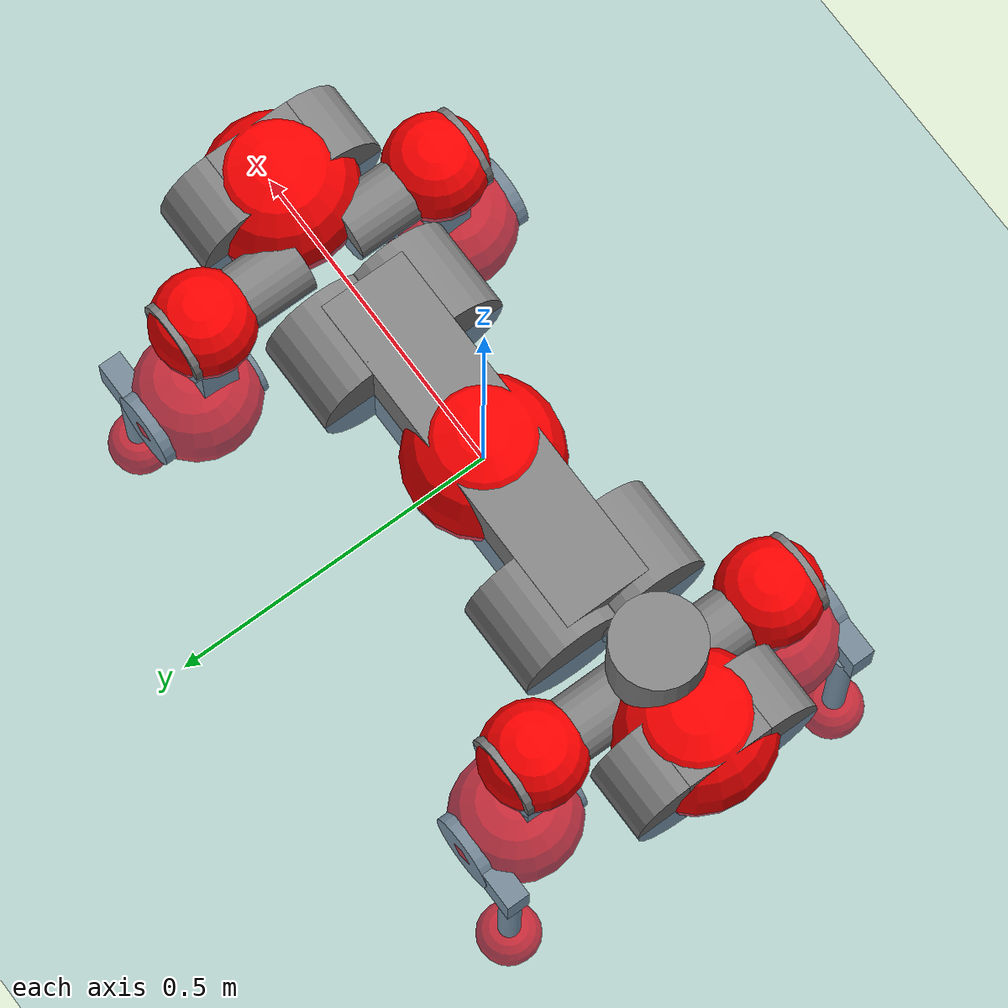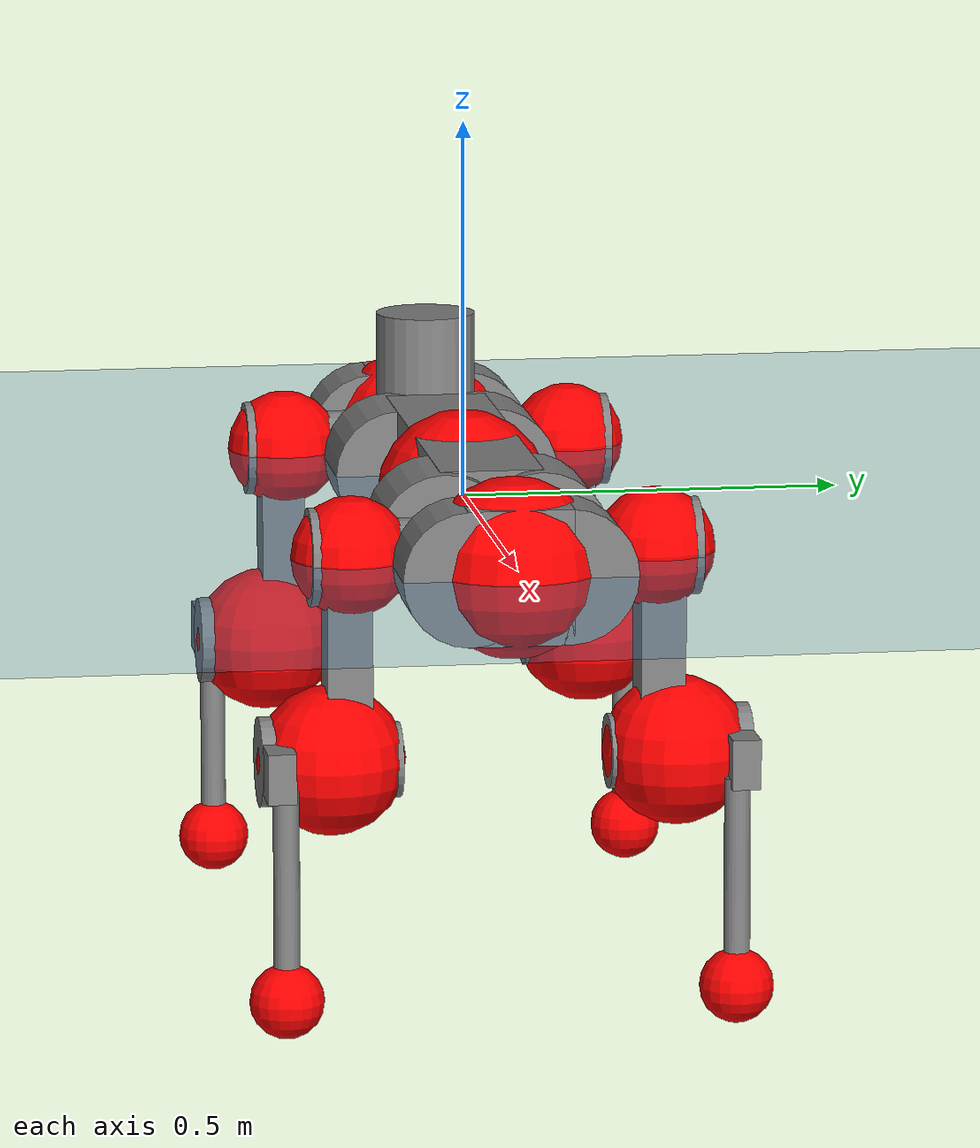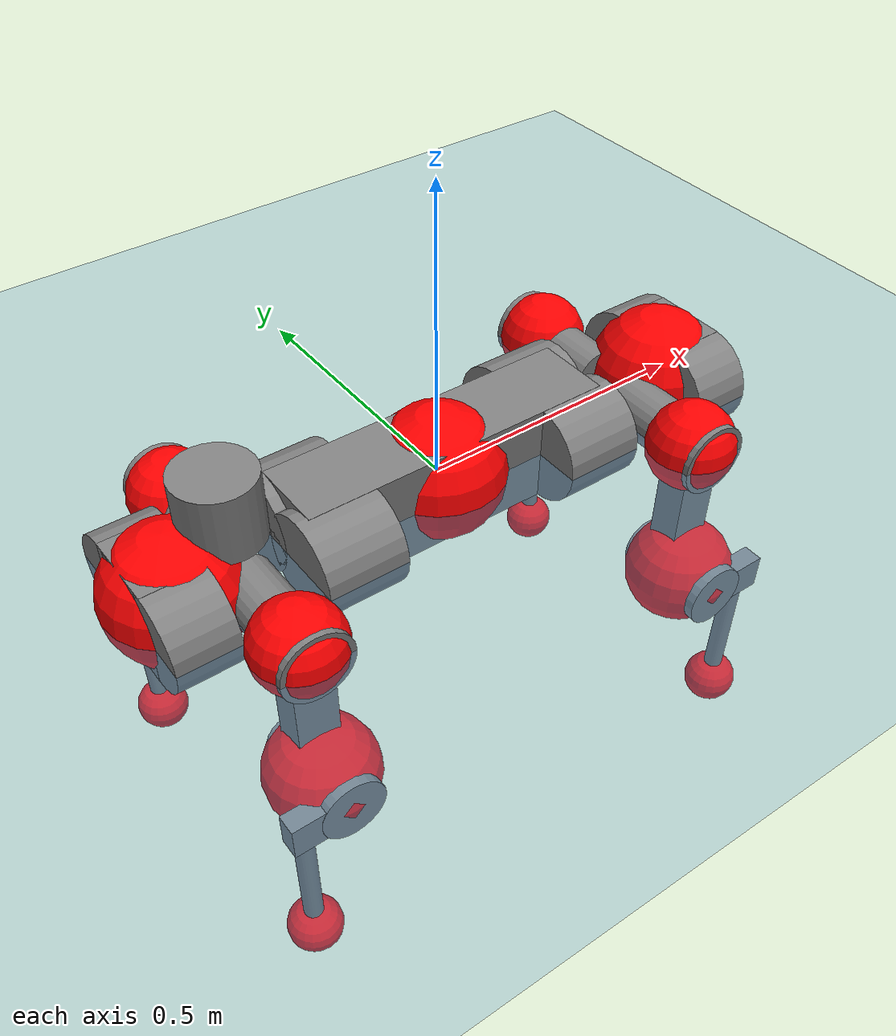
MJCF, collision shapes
<mujoco model="anymal_c">
  <compiler angle="radian" assetdir="assets" balanceinertia="true" inertiafromgeom="false"/>

  <option timestep="0.005" density="1.2" viscosity="2e-05"/>

  <size nkey="1"/>

  <visual>
    <quality shadowsize="8192"/>
    <map shadowclip="0.5"/>
  </visual>

  <default>
    <default class="/">
      <material specular="0" shininess="0.25"/>
      <geom contype="0" conaffinity="0" group="1" solref="-1000 -80"/>
      <site size="0.01 0.005 0.005" group="5"/>
      <general forcelimited="true" forcerange="-80 80" biastype="affine" gainprm="80" biasprm="0 -80 -2"/>
      <default class="anymal_c">
        <joint armature="0.01" damping="0.01" frictionloss="0.1"/>
        <default class="visual">
          <geom type="mesh" group="2"/>
          <default class="visual_zflip"/>
        </default>
        <default class="collision">
          <geom type="cylinder" group="3"/>
          <default class="foot">
            <geom size="0.03 0 0" type="sphere" condim="6" priority="1" friction="0.8 0.02 0.01" solimp="0.015 1 0.03"/>
          </default>
        </default>
      </default>
      <default class="reward_collision_sphere">
        <geom group="5" rgba="1 0 0 1"/>
      </default>
    </default>
  </default>

  <asset>
    <texture type="skybox" colorspace="auto" name="//unnamed_texture_0" builtin="gradient" rgb1="0.95 0.95 0.95" rgb2="0.95 0.95 0.95" width="100" height="600"/>
    <texture type="2d" colorspace="auto" name="texplane" builtin="checker" rgb1="0.345 0.575 0.748" rgb2="0.345 0.575 0.748" markrgb="1 1 1" width="512" height="512"/>
    <texture type="2d" colorspace="linear" name="base" file="base.png"/>
    <texture type="2d" colorspace="linear" name="top_shell" file="top_shell.png"/>
    <texture type="2d" colorspace="linear" name="bottom_shell" file="bottom_shell.png"/>
    <texture type="2d" colorspace="linear" name="remote" file="remote.png"/>
    <texture type="2d" colorspace="linear" name="hatch" file="hatch.png"/>
    <texture type="2d" colorspace="linear" name="handle" file="handle.png"/>
    <texture type="2d" colorspace="linear" name="face" file="face.png"/>
    <texture type="2d" colorspace="linear" name="battery" file="battery.png"/>
    <texture type="2d" colorspace="linear" name="lidar_cage" file="lidar_cage.png"/>
    <texture type="2d" colorspace="linear" name="depth_camera" file="depth_camera.png"/>
    <texture type="2d" colorspace="linear" name="wide_angle_camera" file="wide_angle_camera.png"/>
    <texture type="2d" colorspace="linear" name="lidar" file="lidar.png"/>
    <texture type="2d" colorspace="linear" name="drive" file="drive.png"/>
    <texture type="2d" colorspace="linear" name="hip_l" file="hip_l.png"/>
    <texture type="2d" colorspace="linear" name="shank_l" file="shank_l.png"/>
    <texture type="2d" colorspace="linear" name="foot" file="foot.png"/>
    <texture type="2d" colorspace="linear" name="thigh" file="thigh.png"/>
    <texture type="2d" colorspace="linear" name="shank_r" file="shank_r.png"/>
    <texture type="2d" colorspace="linear" name="hip_r" file="hip_r.png"/>
    <material name="MatPlane" class="/" texture="texplane" texuniform="true" texrepeat="2 2" specular="0.9" shininess="0.5"/>
    <material name="black_plastic" class="/" rgba="0.007 0.007 0.007 1"/>
    <material name="green" class="/" rgba="0.052 0.178 0.033 1"/>
    <material name="red" class="/" rgba="0.178 0.006 0.005 1"/>
    <material name="yellow" class="/" rgba="0.178 0.119 0.006 1"/>
    <material name="lwl" class="/" rgba="0.8 0.8 0.8 1"/>
    <material name="base" class="/" texture="base"/>
    <material name="top_shell" class="/" texture="top_shell"/>
    <material name="bottom_shell" class="/" texture="bottom_shell"/>
    <material name="hip_l" class="/" texture="hip_l"/>
    <material name="thigh" class="/" texture="thigh"/>
    <material name="shank_l" class="/" texture="shank_l"/>
    <material name="foot" class="/" texture="foot"/>
    <material name="hip_r" class="/" texture="hip_r"/>
    <material name="shank" class="/" texture="shank_r"/>
    <material name="hatch" class="/" texture="hatch"/>
    <material name="remote" class="/" texture="remote"/>
    <material name="handle" class="/" texture="handle"/>
    <material name="face" class="/" texture="face"/>
    <material name="depth_camera" class="/" texture="depth_camera"/>
    <material name="wide_angle_camera" class="/" texture="wide_angle_camera"/>
    <material name="battery" class="/" texture="battery"/>
    <material name="lidar_cage" class="/" texture="lidar_cage"/>
    <material name="lidar" class="/" texture="lidar"/>
    <material name="drive" class="/" texture="drive"/>
    <mesh name="base_0" class="/" file="base_0.obj"/>
    <mesh name="base_1" class="/" file="base_1.obj"/>
    <mesh name="base_2" class="/" file="base_2.obj"/>
    <mesh name="base_3" class="/" file="base_3.obj"/>
    <mesh name="base_4" class="/" file="base_4.obj"/>
    <mesh name="base_5" class="/" file="base_5.obj"/>
    <mesh name="top_shell" class="/" file="top_shell.obj"/>
    <mesh name="bottom_shell" class="/" file="bottom_shell.obj"/>
    <mesh name="remote" class="/" file="remote.obj"/>
    <mesh name="handle" class="/" file="handle.obj"/>
    <mesh name="face" class="/" file="face.obj"/>
    <mesh name="wide_angle_camera" class="/" file="wide_angle_camera.obj"/>
    <mesh name="depth_camera" class="/" file="depth_camera.obj"/>
    <mesh name="battery" class="/" file="battery.obj"/>
    <mesh name="lidar_cage" class="/" file="lidar_cage.obj"/>
    <mesh name="lidar" class="/" file="lidar.obj"/>
    <mesh name="drive" class="/" file="drive.obj"/>
    <mesh name="hip_l" class="/" file="hip_l.obj"/>
    <mesh name="thigh" class="/" file="thigh.obj"/>
    <mesh name="shank_l" class="/" file="shank_l.obj"/>
    <mesh name="foot" class="/" file="foot.obj"/>
    <mesh name="hip_r" class="/" file="hip_r.obj"/>
    <mesh name="hatch" class="/" file="hatch.obj"/>
    <mesh name="shank_r" class="/" file="shank_r.obj"/>
  </asset>

  <worldbody>
    <geom name="floor" class="/" size="100 100 0.125" type="plane" group="0" material="MatPlane"/>
    <light name="toplight_shadow" class="/" pos="0 0 5" dir="0.0990148 0.0990148 -0.990148" type="directional" ambient="0.04 0.04 0.04" diffuse="0.55 0.55 0.55" specular="0.12 0.12 0.12"/>
    <light name="toplight_fill" class="/" pos="0 0 5" dir="0.0990148 0.0990148 -0.990148" type="directional" castshadow="false" ambient="0.04 0.04 0.04" diffuse="0.3 0.3 0.3" specular="0.08 0.08 0.08"/>
    <body name="trunk" childclass="anymal_c" pos="0.00198551 -0.000996201 -0.000523379" quat="1 6.25382e-05 -0.000338721 5.57e-05">
      <inertial pos="0.00243114 -0.000162928 0.0462311" quat="0.50155 0.499759 0.499912 0.498775" mass="17.0823" diaginertia="0.895002 0.378787 0.157495"/>
      <joint name="//unnamed_joint_0" type="free" armature="0" damping="0" frictionloss="0"/>
      <geom name="//unnamed_geom_1" class="visual" material="green" mesh="base_0"/>
      <geom name="//unnamed_geom_2" class="visual" material="yellow" mesh="base_1"/>
      <geom name="//unnamed_geom_3" class="visual" material="red" mesh="base_2"/>
      <geom name="//unnamed_geom_4" class="visual" material="black_plastic" mesh="base_3"/>
      <geom name="//unnamed_geom_5" class="visual" material="lwl" mesh="base_4"/>
      <geom name="//unnamed_geom_6" class="visual" material="base" mesh="base_5"/>
      <geom name="trunk_1" class="collision" size="0.280405 0.0676839 0.0870222" type="box"/>
      <geom name="trunk_2" class="collision" size="0.0870222 0.0701012" pos="0.230716 0.0631531 0" quat="0.707107 0 0.707107 0"/>
      <geom name="trunk_3" class="collision" size="0.0870222 0.0701012" pos="-0.230716 0.0631531 0" quat="0.707107 0 0.707107 0"/>
      <geom name="trunk_4" class="collision" size="0.0870222 0.0701012" pos="0.230716 -0.0631531 0" quat="0.707107 0 0.707107 0"/>
      <geom name="trunk_5" class="collision" size="0.0870222 0.0701012" pos="-0.230716 -0.0631531 0" quat="0.707107 0 0.707107 0"/>
      <geom name="//unnamed_geom_12" class="visual" material="top_shell" mesh="top_shell"/>
      <geom name="//unnamed_geom_13" class="visual" material="bottom_shell" mesh="bottom_shell"/>
      <geom name="//unnamed_geom_14" class="visual" material="remote" mesh="remote"/>
      <geom name="//unnamed_geom_15" class="visual" material="handle" mesh="handle"/>
      <geom name="//unnamed_geom_16" class="visual" pos="0.439687 0 0" quat="1 0 0 0" material="face" mesh="face"/>
      <geom name="trunk_6" class="collision" size="0.0531802 0.0676839 0.0870222" pos="0.498029 0 0" type="box"/>
      <geom name="//unnamed_geom_18" class="collision" size="0.0870222 0.0531802" pos="0.498029 0.0631531 0" quat="0.707107 0 0.707107 0"/>
      <geom name="//unnamed_geom_19" class="collision" size="0.0870222 0.0531802" pos="0.498029 -0.0631531 0" quat="0.707107 0 0.707107 0"/>
      <geom name="//unnamed_geom_20" class="visual" pos="0.489697 0 -0.0264488" quat="0.965926 0 0.258819 0" material="depth_camera" mesh="depth_camera"/>
      <geom name="//unnamed_geom_21" class="visual" pos="0.544172 0 0.0140387" material="wide_angle_camera" mesh="wide_angle_camera"/>
      <geom name="//unnamed_geom_22" class="visual_zflip" pos="-0.439687 0 0" quat="0 0 0 1" material="face" mesh="face"/>
      <geom name="trunk_7" class="collision" size="0.0531802 0.0676839 0.0870222" pos="-0.498029 0 0" quat="0 0 0 1" type="box"/>
      <geom name="//unnamed_geom_24" class="collision" size="0.0870222 0.0531802" pos="-0.498029 -0.0631531 0" quat="0 -0.707107 0 0.707107"/>
      <geom name="//unnamed_geom_25" class="collision" size="0.0870222 0.0531802" pos="-0.498029 0.0631531 0" quat="0 -0.707107 0 0.707107"/>
      <geom name="//unnamed_geom_26" class="visual" pos="-0.489697 0 -0.0264488" quat="0 -0.258819 0 0.965926" material="depth_camera" mesh="depth_camera"/>
      <geom name="//unnamed_geom_27" class="visual_zflip" pos="-0.544172 0 0.0140387" quat="0 0 0 1" material="wide_angle_camera" mesh="wide_angle_camera"/>
      <geom name="//unnamed_geom_28" class="visual" material="battery" mesh="battery"/>
      <geom name="//unnamed_geom_29" class="visual" pos="0 0.0668952 0.0281774" quat="0.683013 -0.183013 0.183013 0.683013" material="depth_camera" mesh="depth_camera"/>
      <geom name="//unnamed_geom_30" class="visual" pos="0 -0.0668952 0.0281774" quat="0.683013 0.183013 0.183013 -0.683013" material="depth_camera" mesh="depth_camera"/>
      <geom name="//unnamed_geom_31" class="visual" pos="-0.386118 0 0.0689274" quat="1 0 0 0" material="lidar_cage" mesh="lidar_cage"/>
      <geom name="trunk_8" class="collision" size="0.0676839 0.0580148" pos="-0.386118 0 0.125195"/>
      <geom name="//unnamed_geom_33" class="visual" pos="-0.386118 -6.23012e-05 0.133353" quat="0.707107 0 0 -0.707107" material="lidar" mesh="lidar"/>
      <geom name="//unnamed_geom_34" class="visual" pos="0.318123 0.0938401 -6.14117e-10" quat="0.258819 0.965926 0 0" material="drive" mesh="drive"/>
      <geom name="//unnamed_geom_35" class="visual" pos="0.318123 -0.0938401 6.14117e-10" quat="0.258819 -0.965926 0 0" material="drive" mesh="drive"/>
      <geom name="//unnamed_geom_36" class="visual" pos="-0.318123 0.0938401 6.14117e-10" quat="0 0 0.965926 -0.258819" material="drive" mesh="drive"/>
      <geom name="//unnamed_geom_37" class="visual" pos="-0.318123 -0.0938401 -6.14117e-10" quat="0 0 -0.965926 -0.258819" material="drive" mesh="drive"/>
      <geom name="//unnamed_geom_38" class="visual" pos="0.123049 0 0.0684585" quat="1 0 0 0" material="hatch" mesh="hatch"/>
      <geom name="//unnamed_geom_39" class="reward_collision_sphere" size="0.11603"/>
      <geom name="//unnamed_geom_40" class="reward_collision_sphere" size="0.11603" pos="0.477344 0 0"/>
      <geom name="//unnamed_geom_41" class="reward_collision_sphere" size="0.11603" pos="-0.477344 0 0"/>
      <site name="imu" pos="0.259508 0.00621869 0.031485" size="0.00966913"/>
      <camera name="track" pos="0 -1.80437 0" quat="0.707107 0.707107 0 0" mode="trackcom"/>
      <camera name="ego_camera" pos="0.477344 0 -0.0375115" quat="-0.5 -0.5 0.5 0.5"/>
      <body name="LF_HIP" pos="0.318657 0.0944339 0.000870783" quat="0.259042 0.965866 8.66187e-05 -0.000789839">
        <inertial pos="0.0579248 -0.012516 -0.00732897" quat="-0.127978 0.709773 -0.135305 0.679365" mass="2.52618" diaginertia="0.00789696 0.00290414 0.00237157"/>
        <joint name="LF_HAA" pos="0 0 0" axis="0.999891 -0.00133732 -0.0146878" range="-0.729823 0.490436" armature="0.00851799" damping="0.00864308" frictionloss="0.0936557"/>
        <geom name="//unnamed_geom_42" class="visual" pos="0 -3.61257e-05 5.93362e-06" quat="0.258819 -0.965926 0 0" material="hip_l" mesh="hip_l"/>
        <geom name="//unnamed_geom_43" class="visual" pos="0.0635398 -0.0749167 -0.0435165" quat="0.183013 -0.683013 0.683013 0.183013" material="drive" mesh="drive"/>
        <geom name="//unnamed_geom_44" class="collision" size="0.0483457 0.0676839" pos="0.0635398 -0.01079 -0.00647542" quat="-0.353553 -0.612372 0.612372 -0.353553"/>
        <body name="LF_THIGH" pos="0.0639628 -0.0647983 -0.0398445" quat="0.183329 -0.682967 0.682921 0.18321">
          <inertial pos="0.032719 1.27432e-05 -0.232784" quat="0.993547 -0.00441147 -0.0792446 0.0810272" mass="2.82202" diaginertia="0.0411024 0.0181019 0.00307837"/>
          <joint name="LF_HFE" pos="0 0 0" axis="0.999998 -0.00143814 0.00131599" range="-3.16303 3.13996" armature="0.0104947" damping="0.00985506" frictionloss="0.097359"/>
          <geom name="//unnamed_geom_45" class="visual" pos="0.00315509 4.97168e-06 0" quat="0.707107 0 0 -0.707107" material="thigh" mesh="thigh"/>
          <geom name="//unnamed_geom_46" class="collision" size="0.0628494 0.0386765" pos="0.0424306 0 0" quat="0.5 0.5 -0.5 -0.5"/>
          <geom name="//unnamed_geom_47" class="collision" size="0.0362592 0.0290074 0.136638" pos="0.031823 0 -0.132523" quat="0.707107 0 0 -0.707107" type="box"/>
          <geom name="//unnamed_geom_48" class="visual" pos="0.106395 0 -0.267269" quat="1 0 0 0" material="drive" mesh="drive"/>
          <geom name="//unnamed_geom_49" class="collision" size="0.0483457 0.0676839" pos="0.0321412 0 -0.267269" quat="0.707107 0 0.707107 0"/>
          <geom name="//unnamed_geom_50" class="reward_collision_sphere" size="0.077353" pos="0.0265191 0 0"/>
          <body name="LF_SHANK" pos="0.106746 -0.00284269 -0.266398" quat="1 -0.000323832 0.000116303 3.02188e-05">
            <inertial pos="0.0051239 -0.0546787 -0.0758826" quat="0.992613 -0.115918 -0.0065692 -0.0352097" mass="0.532825" diaginertia="0.0134701 0.00552826 0.000795537"/>
            <joint name="LF_KFE" pos="0 0 0" axis="0.999988 0.00480176 0.000348952" range="-3.14495 3.13939" armature="0.00964285" damping="0.00229308" frictionloss="0.099275"/>
            <geom name="//unnamed_geom_51" class="visual" pos="0.0010288 0.00548564 0" quat="0.707107 0 0 -0.707107" material="shank_l" mesh="shank_l"/>
            <geom name="LF_kfe_act" class="collision" size="0.0580148 0.0193383" pos="0.0212153 0 0" quat="0.5 0.5 -0.5 -0.5"/>
            <geom name="//unnamed_geom_53" class="collision" size="0.0555965 0.0326333 0.0183713" pos="0.0212153 -0.0518748 0" quat="0.5 0.5 -0.5 -0.5" type="box"/>
            <geom name="//unnamed_geom_54" class="visual" pos="0.0138427 -0.0775795 -0.316944" quat="0.382683 0 0 -0.92388" material="foot" mesh="foot"/>
            <geom name="LF_calf" class="collision" size="0.016921 0.136578" pos="0.013843 -0.0793473 -0.158472" quat="0.707107 0 0 -0.707107"/>
            <geom name="LF_foot" class="foot" size="0.0301286" pos="0.013843 -0.0793473 -0.295844" quat="0.707107 0 0 -0.707107"/>
            <geom name="//unnamed_geom_57" class="reward_collision_sphere" size="0.0966913" pos="-0.0530383 0 0"/>
            <geom name="//unnamed_geom_58" class="reward_collision_sphere" size="0.0483457" pos="0.013843 -0.0793473 -0.295844"/>
            <site name="LF_foot" class="foot" pos="0.013843 -0.0793473 -0.295844" quat="0.707107 0 0 -0.707107" size="0.00966913"/>
          </body>
        </body>
      </body>
      <body name="RF_HIP" pos="0.316183 -0.0920124 -0.000734196" quat="0.258805 -0.96593 -1.8308e-06 1.17098e-05">
        <inertial pos="0.0626666 0.0131188 -0.0100208" quat="0.135629 0.679392 0.127769 0.709723" mass="2.59308" diaginertia="0.00805374 0.00300968 0.00245215"/>
        <joint name="RF_HAA" pos="0 0 0" axis="0.999932 0.0115848 -0.00136692" range="-0.537942 0.728908" armature="0.00975516" damping="0.0122981" frictionloss="0.0888135"/>
        <geom name="//unnamed_geom_59" class="visual" pos="0 3.61255e-05 5.93361e-06" quat="0.258819 0.965926 0 0" material="hip_r" mesh="hip_r"/>
        <geom name="//unnamed_geom_60" class="visual" pos="0.0635398 0.0749167 -0.0435165" quat="0.183013 0.683013 0.683013 -0.183013" material="drive" mesh="drive"/>
        <geom name="//unnamed_geom_61" class="collision" size="0.0483457 0.0676839" pos="0.0635398 0.01079 -0.00647542" quat="-0.353553 0.612372 0.612372 0.353553"/>
        <body name="RF_THIGH" pos="0.0639119 0.0663008 -0.0397397" quat="0.183013 0.683178 0.68283 -0.183078">
          <inertial pos="0.0333137 0.00244085 -0.230886" quat="0.992771 -0.00515867 -0.0807099 0.088686" mass="2.73842" diaginertia="0.0404487 0.0176421 0.002994"/>
          <joint name="RF_HFE" pos="0 0 0" axis="0.999991 -0.00272914 -0.00324958" stiffness="0.0020531" range="-3.14945 3.12862" armature="0.0101608" damping="0.00110473" frictionloss="0.0954289"/>
          <geom name="//unnamed_geom_62" class="visual" pos="0.00315509 4.97168e-06 0" quat="0.707107 0 0 -0.707107" material="thigh" mesh="thigh"/>
          <geom name="//unnamed_geom_63" class="collision" size="0.0628494 0.0386765" pos="0.0424306 0 0" quat="0.5 0.5 0.5 0.5"/>
          <geom name="//unnamed_geom_64" class="collision" size="0.0362592 0.0290074 0.136638" pos="0.031823 0 -0.132523" quat="0.707107 0 0 0.707107" type="box"/>
          <geom name="//unnamed_geom_65" class="visual" pos="0.106395 0 -0.267269" quat="1 0 0 0" material="drive" mesh="drive"/>
          <geom name="//unnamed_geom_66" class="collision" size="0.0483457 0.0676839" pos="0.0321412 0 -0.267269" quat="0.707107 0 0.707107 0"/>
          <geom name="//unnamed_geom_67" class="reward_collision_sphere" size="0.077353" pos="0.0265191 0 0"/>
          <body name="RF_SHANK" pos="0.106088 -0.000928982 -0.265228" quat="0.999999 0.00109321 -0.00045255 -0.000407472">
            <inertial pos="0.00853311 0.0549036 -0.0737529" quat="0.992993 0.115454 -0.00161902 0.0251343" mass="0.520199" diaginertia="0.0135456 0.00563592 0.000835429"/>
            <joint name="RF_KFE" pos="0 0 0" axis="1 6.80837e-06 -0.00017216" range="-3.17924 3.12654" armature="0.00978204" damping="0.0184007" frictionloss="0.105897"/>
            <geom name="//unnamed_geom_68" class="visual" pos="0.0010288 -0.00548563 0" quat="0.707107 0 0 0.707107" material="shank" mesh="shank_r"/>
            <geom name="RF_kfe_act" class="collision" size="0.0580148 0.0193383" pos="0.0212153 0 0" quat="0.5 0.5 0.5 0.5"/>
            <geom name="//unnamed_geom_70" class="collision" size="0.0555965 0.0326333 0.0183713" pos="0.0212153 0.0518748 0" quat="0.5 0.5 0.5 0.5" type="box"/>
            <geom name="//unnamed_geom_71" class="visual" pos="0.0138432 0.0775795 -0.316944" quat="0.382683 0 0 0.92388" material="foot" mesh="foot"/>
            <geom name="RF_calf" class="collision" size="0.016921 0.136578" pos="0.013843 0.0793473 -0.158472" quat="0.707107 0 0 0.707107"/>
            <geom name="RF_foot" class="foot" size="0.0289536" pos="0.013843 0.0793473 -0.295844" quat="0.707107 0 0 0.707107"/>
            <geom name="//unnamed_geom_74" class="reward_collision_sphere" size="0.0966913" pos="-0.0530383 0 0"/>
            <geom name="//unnamed_geom_75" class="reward_collision_sphere" size="0.0483457" pos="0.013843 0.0793473 -0.295844"/>
            <site name="RF_foot" class="foot" pos="0.013843 0.0793473 -0.295844" quat="0.707107 0 0 0.707107" size="0.00966913"/>
          </body>
        </body>
      </body>
      <body name="LH_HIP" pos="-0.315011 0.092465 0.000552632" quat="0.000334894 0.000209221 0.965955 -0.258709">
        <inertial pos="0.0625649 0.0110434 -0.0077328" quat="0.140382 0.678779 0.135299 0.707988" mass="2.53313" diaginertia="0.00795119 0.00294127 0.00233405"/>
        <joint name="LH_HAA" pos="0 0 0" axis="0.999999 -0.000262626 -0.00164284" range="-0.482659 0.703225" armature="0.00971293" damping="0.0100377" frictionloss="0.101795"/>
        <geom name="//unnamed_geom_76" class="visual" pos="0 3.61255e-05 5.93361e-06" quat="-0.258819 -0.965926 0 0" material="hip_r" mesh="hip_r"/>
        <geom name="//unnamed_geom_77" class="visual" pos="0.0635398 0.0749167 -0.0435165" quat="0.183013 0.683013 0.683013 -0.183013" material="drive" mesh="drive"/>
        <geom name="//unnamed_geom_78" class="collision" size="0.0483457 0.0676839" pos="0.0635398 0.01079 -0.00647542" quat="-0.353553 0.612372 0.612372 0.353553"/>
        <body name="LH_THIGH" pos="0.0625175 0.0649687 -0.0396131" quat="0.18331 0.682967 0.683032 -0.182812">
          <inertial pos="0.0323219 0.00225376 -0.229684" quat="0.992538 6.68088e-05 -0.0837538 0.0886203" mass="2.78878" diaginertia="0.0407687 0.0181565 0.00297065"/>
          <joint name="LH_HFE" pos="0 0 0" axis="0.999959 0.00123607 -0.00901887" range="-3.12967 3.14495" armature="0.0107681" damping="0.00395096" frictionloss="0.104778"/>
          <geom name="//unnamed_geom_79" class="visual" pos="0.00315509 4.97168e-06 0" quat="0.707107 0 0 -0.707107" material="thigh" mesh="thigh"/>
          <geom name="//unnamed_geom_80" class="collision" size="0.0628494 0.0386765" pos="0.0424306 0 0" quat="0.5 0.5 -0.5 -0.5"/>
          <geom name="//unnamed_geom_81" class="collision" size="0.0362592 0.0290074 0.136638" pos="0.031823 0 -0.132523" quat="0.707107 0 0 -0.707107" type="box"/>
          <geom name="//unnamed_geom_82" class="visual" pos="0.106395 0 -0.267269" quat="1 0 0 0" material="drive" mesh="drive"/>
          <geom name="//unnamed_geom_83" class="collision" size="0.0483457 0.0676839" pos="0.0321412 0 -0.267269" quat="0.707107 0 0.707107 0"/>
          <geom name="//unnamed_geom_84" class="reward_collision_sphere" size="0.077353" pos="0.0265191 0 0"/>
          <body name="LH_SHANK" pos="0.106559 0.000791469 -0.270256" quat="0.999999 -0.000533743 -0.000897632 -0.000912769">
            <inertial pos="0.00633705 0.0551294 -0.0730476" quat="0.992978 0.115427 -0.00249227 0.0257746" mass="0.516875" diaginertia="0.0136482 0.00556539 0.000809146"/>
            <joint name="LH_KFE" pos="0 0 0" axis="0.999973 -0.00715555 0.00146111" range="-3.15239 3.13412" armature="0.00935393" damping="0.006936" frictionloss="0.090554"/>
            <geom name="//unnamed_geom_85" class="visual" pos="0.0010288 -0.00548563 0" quat="-0.707107 0 0 -0.707107" material="shank" mesh="shank_r"/>
            <geom name="LH_kfe_act" class="collision" size="0.0580148 0.0193383" pos="0.0212153 0 0" quat="0.5 0.5 -0.5 -0.5"/>
            <geom name="//unnamed_geom_87" class="collision" size="0.0555965 0.0326333 0.0183713" pos="0.0212153 0.0518748 0" quat="0.5 0.5 -0.5 -0.5" type="box"/>
            <geom name="//unnamed_geom_88" class="visual" pos="0.0138432 0.0775795 -0.316944" quat="-0.382683 0 0 -0.92388" material="foot" mesh="foot"/>
            <geom name="LH_calf" class="collision" size="0.016921 0.136578" pos="0.013843 0.0793473 -0.158472" quat="0.707107 0 0 -0.707107"/>
            <geom name="LH_foot" class="foot" size="0.0287433" pos="0.013843 0.0793473 -0.295844" quat="0.707107 0 0 -0.707107"/>
            <geom name="//unnamed_geom_91" class="reward_collision_sphere" size="0.0966913" pos="-0.0530383 0 0"/>
            <geom name="//unnamed_geom_92" class="reward_collision_sphere" size="0.0483457" pos="0.013843 0.0793473 -0.295844"/>
            <site name="LH_foot" class="foot" pos="0.013843 0.0793473 -0.295844" quat="0.707107 0 0 -0.707107" size="0.00966913"/>
          </body>
        </body>
      </body>
      <body name="RH_HIP" pos="-0.320373 -0.0949833 0.000366585" quat="0.000363545 -0.000331336 -0.965862 -0.259057">
        <inertial pos="0.0610377 -0.0143341 -0.00773883" quat="-0.136626 0.707804 -0.12781 0.681184" mass="2.52142" diaginertia="0.00787324 0.0029614 0.00239824"/>
        <joint name="RH_HAA" pos="0 0 0" axis="0.999911 0.0130686 -0.00254135" stiffness="0.00259501" range="-0.723397 0.471009" armature="0.0100633" damping="0.00734993" frictionloss="0.0955748"/>
        <geom name="//unnamed_geom_93" class="visual" pos="0 -3.61257e-05 5.93362e-06" quat="-0.258819 0.965926 0 0" material="hip_l" mesh="hip_l"/>
        <geom name="//unnamed_geom_94" class="visual" pos="0.0635398 -0.0749167 -0.0435165" quat="-0.183013 0.683013 -0.683013 -0.183013" material="drive" mesh="drive"/>
        <geom name="//unnamed_geom_95" class="collision" size="0.0483457 0.0676839" pos="0.0635398 -0.01079 -0.00647542" quat="0.353553 0.612372 -0.612372 0.353553"/>
        <body name="RH_THIGH" pos="0.063447 -0.0646325 -0.0375774" quat="-0.183057 0.683373 -0.682681 -0.182861">
          <inertial pos="0.0319758 -0.000629799 -0.231249" quat="0.992081 -0.0127985 -0.0904322 0.0862127" mass="2.78961" diaginertia="0.0403613 0.0181462 0.00311848"/>
          <joint name="RH_HFE" pos="0 0 0" axis="1 0.000172698 0.000958196" range="-3.14708 3.12346" armature="0.0103836" damping="0" frictionloss="0.0994512"/>
          <geom name="//unnamed_geom_96" class="visual" pos="0.00315509 4.97168e-06 0" quat="0.707107 0 0 -0.707107" material="thigh" mesh="thigh"/>
          <geom name="//unnamed_geom_97" class="collision" size="0.0628494 0.0386765" pos="0.0424306 0 0" quat="0.5 0.5 0.5 0.5"/>
          <geom name="//unnamed_geom_98" class="collision" size="0.0362592 0.0290074 0.136638" pos="0.031823 0 -0.132523" quat="0.707107 0 0 0.707107" type="box"/>
          <geom name="//unnamed_geom_99" class="visual" pos="0.106395 0 -0.267269" quat="1 0 0 0" material="drive" mesh="drive"/>
          <geom name="//unnamed_geom_100" class="collision" size="0.0483457 0.0676839" pos="0.0321412 0 -0.267269" quat="0.707107 0 0.707107 0"/>
          <geom name="//unnamed_geom_101" class="reward_collision_sphere" size="0.077353" pos="0.0265191 0 0"/>
          <body name="RH_SHANK" pos="0.106659 -4.36156e-06 -0.267183" quat="1 2.84671e-05 1.73719e-05 0.000344125">
            <inertial pos="0.00397296 -0.0575821 -0.0734261" quat="0.993158 -0.114274 -0.00149066 -0.0240111" mass="0.539398" diaginertia="0.0134729 0.00560801 0.000808423"/>
            <joint name="RH_KFE" pos="0 0 0" axis="0.999983 -0.00577536 -0.000342427" stiffness="0.00258936" range="-3.10919 3.18081" armature="0.0095883" damping="0.00547414" frictionloss="0.108045"/>
            <geom name="//unnamed_geom_102" class="visual" pos="0.0010288 0.00548564 0" quat="0.707107 0 0 -0.707107" material="shank_l" mesh="shank_l"/>
            <geom name="RH_kfe_act" class="collision" size="0.0580148 0.0193383" pos="0.0212153 0 0" quat="0.5 0.5 0.5 0.5"/>
            <geom name="//unnamed_geom_104" class="collision" size="0.0555965 0.0326333 0.0183713" pos="0.0212153 -0.0518748 0" quat="0.5 0.5 0.5 0.5" type="box"/>
            <geom name="//unnamed_geom_105" class="visual" pos="0.0138427 -0.0775795 -0.316944" quat="0.382683 0 0 -0.92388" material="foot" mesh="foot"/>
            <geom name="RH_calf" class="collision" size="0.016921 0.136578" pos="0.013843 -0.0793473 -0.158472" quat="0.707107 0 0 0.707107"/>
            <geom name="RH_foot" class="foot" size="0.0288133" pos="0.013843 -0.0793473 -0.295844" quat="0.707107 0 0 0.707107"/>
            <geom name="//unnamed_geom_108" class="reward_collision_sphere" size="0.0966913" pos="-0.0530383 0 0"/>
            <geom name="//unnamed_geom_109" class="reward_collision_sphere" size="0.0483457" pos="0.013843 -0.0793473 -0.295844"/>
            <site name="RH_foot" class="foot" pos="0.013843 -0.0793473 -0.295844" quat="0.707107 0 0 0.707107" size="0.00966913"/>
          </body>
        </body>
      </body>
    </body>
  </worldbody>

  <contact>
    <pair class="/" geom1="floor" geom2="LF_foot" name="//unnamed_contact_0"/>
    <pair class="/" geom1="floor" geom2="RF_foot" name="//unnamed_contact_1"/>
    <pair class="/" geom1="floor" geom2="LH_foot" name="//unnamed_contact_2"/>
    <pair class="/" geom1="floor" geom2="RH_foot" name="//unnamed_contact_3"/>
  </contact>

  <actuator>
    <general name="LF_HAA" class="/" joint="LF_HAA" forcerange="-77.6431 77.6431" gainprm="77.8222" biasprm="0 -77.8222 -1.89443"/>
    <general name="LF_HFE" class="/" joint="LF_HFE" forcerange="-72.8315 72.8315" gainprm="77.8222" biasprm="0 -77.8222 -1.89443"/>
    <general name="LF_KFE" class="/" joint="LF_KFE" forcerange="-75.3178 75.3178" gainprm="77.8222" biasprm="0 -77.8222 -1.89443"/>
    <general name="RF_HAA" class="/" joint="RF_HAA" forcerange="-78.2087 78.2087" gainprm="77.8222" biasprm="0 -77.8222 -1.89443"/>
    <general name="RF_HFE" class="/" joint="RF_HFE" forcerange="-78.1415 78.1415" gainprm="77.8222" biasprm="0 -77.8222 -1.89443"/>
    <general name="RF_KFE" class="/" joint="RF_KFE" forcerange="-77.8946 77.8946" gainprm="77.8222" biasprm="0 -77.8222 -1.89443"/>
    <general name="LH_HAA" class="/" joint="LH_HAA" forcerange="-77.8728 77.8728" gainprm="77.8222" biasprm="0 -77.8222 -1.89443"/>
    <general name="LH_HFE" class="/" joint="LH_HFE" forcerange="-78.8474 78.8474" gainprm="77.8222" biasprm="0 -77.8222 -1.89443"/>
    <general name="LH_KFE" class="/" joint="LH_KFE" forcerange="-79.5508 79.5508" gainprm="77.8222" biasprm="0 -77.8222 -1.89443"/>
    <general name="RH_HAA" class="/" joint="RH_HAA" forcerange="-77.5229 77.5229" gainprm="77.8222" biasprm="0 -77.8222 -1.89443"/>
    <general name="RH_HFE" class="/" joint="RH_HFE" forcerange="-74.3527 74.3527" gainprm="77.8222" biasprm="0 -77.8222 -1.89443"/>
    <general name="RH_KFE" class="/" joint="RH_KFE" forcerange="-70.2894 70.2894" gainprm="77.8222" biasprm="0 -77.8222 -1.89443"/>
  </actuator>

  <sensor>
    <gyro site="imu" name="imu_angular_velocity"/>
    <velocimeter site="imu" name="imu_linear_velocity"/>
    <framelinvel objtype="site" objname="LF_foot" name="LF_foot_global_linear_velocity"/>
    <framelinvel objtype="site" objname="RF_foot" name="RF_foot_global_linear_velocity"/>
    <framelinvel objtype="site" objname="LH_foot" name="LH_foot_global_linear_velocity"/>
    <framelinvel objtype="site" objname="RH_foot" name="RH_foot_global_linear_velocity"/>
  </sensor>

  <keyframe>
    <key name="home" qpos="0 0 0.55 1 0 0 0 0 0.4 -0.8 0 -0.4 0.8 0 -0.4 0.8 0 0.4 -0.8"/>
  </keyframe>
</mujoco>
